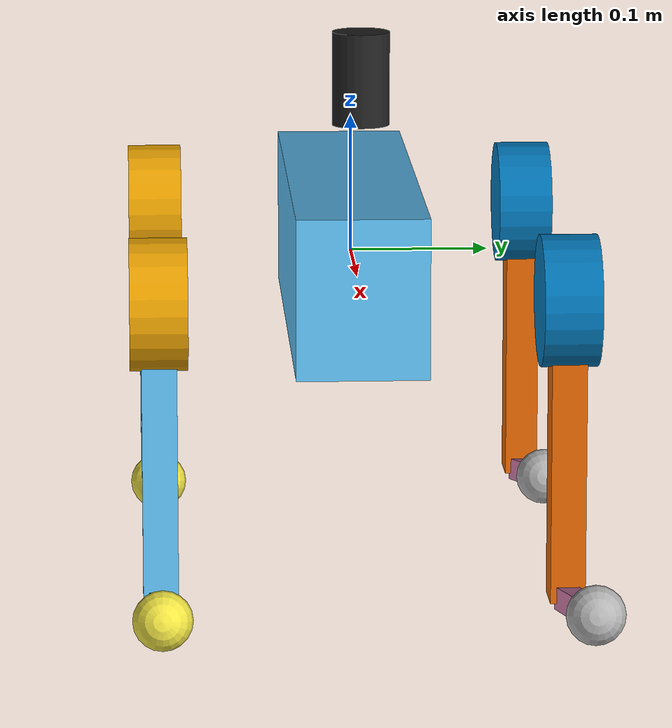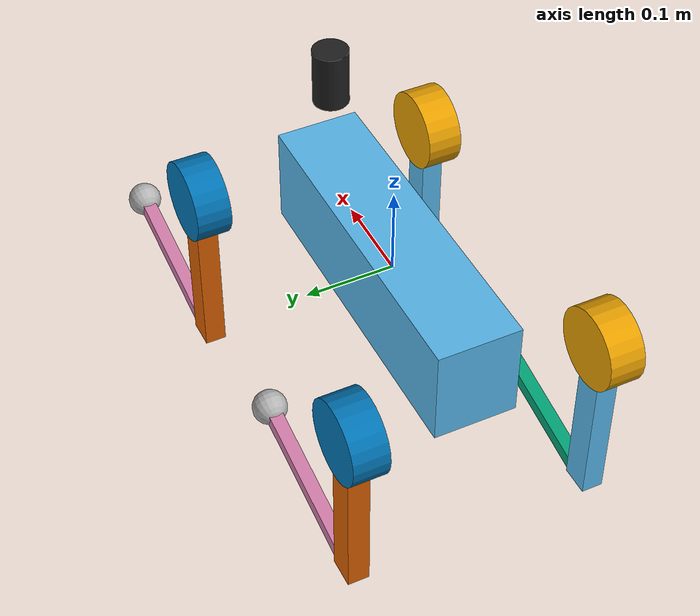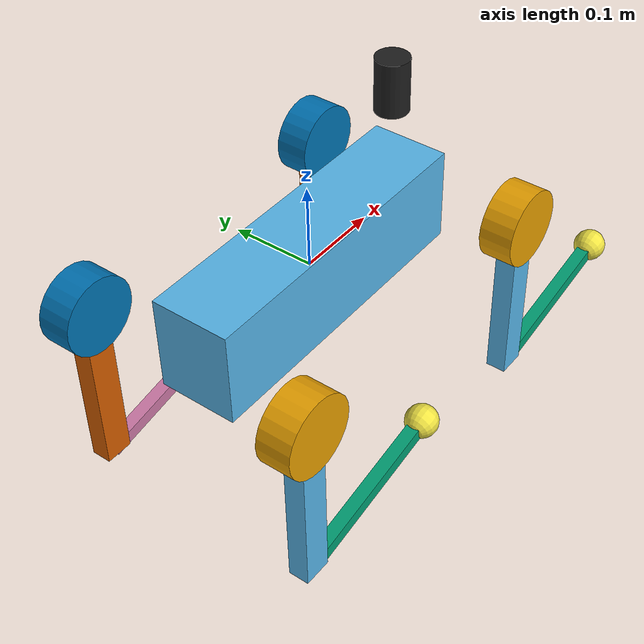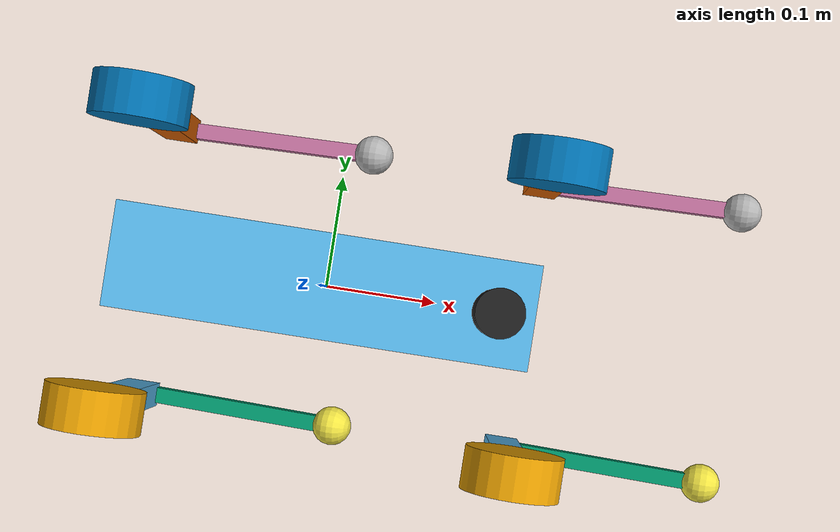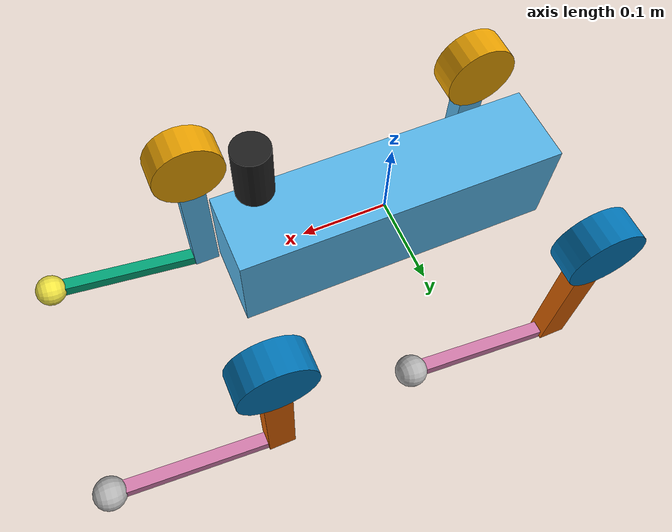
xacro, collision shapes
<?xml version="1.0"?>

<robot name="go2" xmlns:xacro="http://www.ros.org/wiki/xacro">

    <xacro:arg name="DEBUG" default="false"/>

    <xacro:include filename="$(find go2_description)/xacro/const.xacro"/>
    <xacro:include filename="$(find go2_description)/xacro/materials.xacro"/>
    <xacro:include filename="$(find go2_description)/xacro/leg.xacro"/>
    <xacro:include filename="$(find go2_description)/xacro/gazebo.xacro"/>

    <!-- Rotor related joint and link is only for demonstrate location. -->
    <!-- Actually, the rotor will rotate and the joint is not fixed. Reduction ratio should be considered. -->

    <!-- Debug mode will hung up the robot, use "true" or "false" to switch it. -->
    <xacro:if value="$(arg DEBUG)">
        <link name="world"/>
        <joint name="base_static_joint" type="fixed">
            <origin rpy="0 0 0" xyz="0 0 0"/>
            <parent link="world"/>
            <child link="base_link"/>
        </joint>
    </xacro:if>

    <!-- base_link must be URDF root so Champ IK measures hips correctly -->
    <link name="base_link">
        <visual>
            <origin rpy="0 0 0" xyz="0 0 0"/>
            <geometry>
                <box size="0.001 0.001 0.001"/>
            </geometry>
        </visual>
    </link>

    <joint name="floating_base" type="fixed">
        <origin rpy="0 0 0" xyz="0 0 0"/>
        <parent link="base_link"/>
        <child link="trunk"/>
    </joint>

    <link name="trunk">
        <visual>
            <origin rpy="0 0 0" xyz="0 0 0"/>
            <geometry>
                <mesh filename="package://go2_description/meshes/base.dae" scale="1 1 1"/>
            </geometry>
        </visual>
        <collision>
            <origin rpy="0 0 0" xyz="0 0 0"/>
            <geometry>
                <box size="${trunk_length} ${trunk_width} ${trunk_height}"/>
            </geometry>
        </collision>
        <inertial>
            <origin rpy="0 0 0" xyz="${trunk_com_x} ${trunk_com_y} ${trunk_com_z}"/>
            <mass value="${trunk_mass}"/>
            <inertia
                ixx="${trunk_ixx}" ixy="${trunk_ixy}" ixz="${trunk_ixz}"
                iyy="${trunk_iyy}" iyz="${trunk_iyz}"
                izz="${trunk_izz}"/>
        </inertial>
    </link>

    <joint name="imu_joint" type="fixed">
        <parent link="trunk"/>
        <child link="imu_link"/>
        <origin rpy="0 0 0" xyz="0 0 0"/>
    </joint>

    <gazebo>
        <plugin filename="gz-sim-pose-publisher-system" name="gz::sim::systems::PosePublisher">
            <publish_link_pose>false</publish_link_pose>
            <publish_model_pose>true</publish_model_pose>
            <use_pose_vector_msg>true</use_pose_vector_msg>
            <update_frequency>50</update_frequency>
        </plugin>
    </gazebo>

    <gazebo reference="imu_joint">
        <preserveFixedJoint>true</preserveFixedJoint>
    </gazebo>

    <link name="imu_link">
        <inertial>
            <mass value="0.1"/>
            <origin rpy="0 0 0" xyz="0 0 0"/>
            <inertia ixx="0.0001" ixy="0" ixz="0" iyy="0.0001" iyz="0" izz="0.0001"/>
        </inertial>
        <visual>
            <origin rpy="0 0 0" xyz="0 0 0"/>
            <geometry>
                <box size="0.001 0.001 0.001"/>
            </geometry>
        </visual>
        <collision>
            <origin rpy="0 0 0" xyz="0 0 0"/>
            <geometry>
                <box size=".001 .001 .001"/>
            </geometry>
        </collision>
    </link>

    <joint name="front_camera_joint" type="fixed">
        <parent link="trunk"/>
        <child link="front_camera"/>
        <origin rpy="0 0 0" xyz="0.32715 -0.00003 0.04297"/>
    </joint>

    <link name="front_camera">
    </link>

    <!-- Gimbal base attached to trunk -->
    <link name="gimbal_base_link">
        <inertial>
            <mass value="0.01"/>
            <origin rpy="0 0 0" xyz="0 0 0"/>
            <inertia ixx="1e-5" ixy="0" ixz="0" iyy="1e-5" iyz="0" izz="1e-5"/>
        </inertial>
    </link>

    <joint name="gimbal_base_joint" type="fixed">
        <parent link="trunk"/>
        <child link="gimbal_base_link"/>
        <origin rpy="0 0 0" xyz="0.15 0 0.15"/>
    </joint>

    <gazebo reference="gimbal_base_joint">
        <preserveFixedJoint>true</preserveFixedJoint>
    </gazebo>

    <!-- Gimbal roll link -->
    <link name="gimbal_roll_link">
        <inertial>
            <mass value="0.01"/>
            <origin rpy="0 0 0" xyz="0 0 0"/>
            <inertia ixx="1e-5" ixy="0" ixz="0" iyy="1e-5" iyz="0" izz="1e-5"/>
        </inertial>
    </link>

    <joint name="gimbal_roll_joint" type="fixed">
        <parent link="gimbal_base_link"/>
        <child link="gimbal_roll_link"/>
        <origin rpy="0 0 0" xyz="0 0 0"/>
    </joint>

    <!-- Gimbal pitch link -->
    <link name="gimbal_pitch_link">
        <inertial>
            <mass value="0.05"/>
            <origin rpy="0 0 0" xyz="0 0 0"/>
            <inertia ixx="0.001" ixy="0" ixz="0" iyy="0.001" iyz="0" izz="0.001"/>
        </inertial>
    </link>

    <joint name="gimbal_pitch_joint" type="fixed">
        <parent link="gimbal_roll_link"/>
        <child link="gimbal_pitch_link"/>
        <origin rpy="0 0 0" xyz="0 0 0"/>
    </joint>

    <!-- Livox Mid-360 LiDAR attached to the stabilized pitch link -->
    <joint name="livox_joint" type="fixed">
        <parent link="gimbal_pitch_link"/>
        <child link="livox_frame"/>
        <origin rpy="0 0 0" xyz="0 0 0"/>
    </joint>

    <gazebo reference="livox_joint">
        <preserveFixedJoint>true</preserveFixedJoint>
    </gazebo>

    <gazebo reference="livox_frame">
        <material>Gazebo/Black</material>
    </gazebo>

    <link name="livox_frame">
        <inertial>
            <mass value="0.265"/>
            <origin rpy="0 0 0" xyz="0 0 0"/>
            <inertia ixx="0.001" ixy="0" ixz="0" iyy="0.001" iyz="0" izz="0.001"/>
        </inertial>
        <visual>
            <origin rpy="0 0 0" xyz="0 0 0"/>
            <geometry>
                <cylinder length="0.065" radius="0.03"/>
            </geometry>
            <material name="black"/>
        </visual>
        <collision>
            <origin rpy="0 0 0" xyz="0 0 0"/>
            <geometry>
                <cylinder length="0.065" radius="0.02"/>
            </geometry>
        </collision>
    </link>

    <xacro:leg name="FR" mirror="-1" mirror_dae= "False" front_hind="1"  front_hind_dae="True"  />
    <xacro:leg name="FL" mirror="1"  mirror_dae="True"   front_hind="1"  front_hind_dae="True"  />
    <xacro:leg name="RR" mirror="-1" mirror_dae="False"  front_hind="-1" front_hind_dae="False" />
    <xacro:leg name="RL" mirror="1"  mirror_dae="True"   front_hind="-1" front_hind_dae="False" />
</robot>

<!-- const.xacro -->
<robot xmlns:xacro="http://www.ros.org/wiki/xacro">

    <!-- Constants for robot dimensions -->
    <xacro:property name="PI" value="3.1415926535897931"/>
    <xacro:property name="stick_mass" value="0.00001"/>

    <!-- simplified collision value -->
    <xacro:property name="trunk_width" value="0.0935"/>
    <xacro:property name="trunk_length" value="0.3762"/>
    <xacro:property name="trunk_height" value="0.114"/>
    <xacro:property name="hip_radius" value="0.046"/>
    <xacro:property name="hip_length" value="0.04"/>
    <xacro:property name="thigh_shoulder_radius" value="0.041"/>
    <xacro:property name="thigh_shoulder_length" value="0.032"/>
    <xacro:property name="thigh_width" value="0.0245"/>
    <xacro:property name="thigh_height" value="0.034"/>
    <xacro:property name="calf_width" value="0.016"/>
    <xacro:property name="calf_height" value="0.016"/>
    <xacro:property name="foot_radius" value="0.02"/>
    <xacro:property name="stick_radius" value="0.01"/>
    <xacro:property name="stick_length" value="0.2"/>

    <!-- kinematic value -->
    <xacro:property name="thigh_offset" value="0.0955"/>
    <xacro:property name="thigh_length" value="0.213"/>
    <xacro:property name="calf_length" value="0.213"/>

    <!-- leg offset from trunk center value -->
    <xacro:property name="leg_offset_x" value="0.1934"/>
    <xacro:property name="leg_offset_y" value="0.0465"/>
    <xacro:property name="hip_offset" value="0.0955"/>

    <!-- offset of link locations (left front) -->
    <xacro:property name="hip_offset_x" value="0.1934"/>
    <xacro:property name="hip_offset_y" value="0.0465"/>
    <xacro:property name="hip_offset_z" value="0.0"/>

    <xacro:property name="thigh_offset_x" value="0"/>
    <xacro:property name="thigh_offset_y" value="0.0955"/>
    <xacro:property name="thigh_offset_z" value="0.0"/>

    <xacro:property name="calf_offset_x" value="0.0"/>
    <xacro:property name="calf_offset_y" value="0.0"/>
    <xacro:property name="calf_offset_z" value="-0.213"/>

    <!-- joint limits -->
    <xacro:property name="damping" value="0.0"/>
    <xacro:property name="friction" value="0.0"/>
    <xacro:property name="hip_position_max" value="1.0472"/>
    <xacro:property name="hip_position_min" value="-1.0472"/>
    <xacro:property name="hip_velocity_max" value="30.1"/>
    <xacro:property name="hip_torque_max" value="23.7"/>
    <xacro:property name="thigh_position_max" value="3.4907"/>
    <xacro:property name="thigh_position_min" value="-1.5708"/>
    <xacro:property name="thigh_velocity_max" value="30.1"/>
    <xacro:property name="thigh_torque_max" value="23.7"/>
    <xacro:property name="calf_position_max" value="-0.83776"/>
    <xacro:property name="calf_position_min" value="-2.7227"/>
    <xacro:property name="calf_velocity_max" value="20.06"/>
    <xacro:property name="calf_torque_max" value="35.55"/>

    <!-- dynamics inertial value -->
    <!-- trunk -->
    <xacro:property name="trunk_mass" value="6.921"/>
    <xacro:property name="trunk_com_x" value="0.021112"/>
    <xacro:property name="trunk_com_y" value="0.00"/>
    <xacro:property name="trunk_com_z" value="-0.005366"/>
    <xacro:property name="trunk_ixx" value="0.02448"/>
    <xacro:property name="trunk_ixy" value="0.00012166"/>
    <xacro:property name="trunk_ixz" value="0.0014849"/>
    <xacro:property name="trunk_iyy" value="0.098077"/>
    <xacro:property name="trunk_iyz" value="-3.12E-05"/>
    <xacro:property name="trunk_izz" value="0.107"/>

    <!-- hip (left front) -->
    <xacro:property name="hip_mass" value="0.678"/>
    <xacro:property name="hip_com_x" value="-0.0054"/>
    <xacro:property name="hip_com_y" value="0.00194"/>
    <xacro:property name="hip_com_z" value="-0.000105"/>
    <xacro:property name="hip_ixx" value="0.00048"/>
    <xacro:property name="hip_ixy" value="-3.01E-06"/>
    <xacro:property name="hip_ixz" value="1.11E-06"/>
    <xacro:property name="hip_iyy" value="0.000884"/>
    <xacro:property name="hip_iyz" value="-1.42E-06"/>
    <xacro:property name="hip_izz" value="0.000596"/>

    <!-- thigh -->
    <xacro:property name="thigh_mass" value="1.152"/>
    <xacro:property name="thigh_com_x" value="-0.00374"/>
    <xacro:property name="thigh_com_y" value="-0.0223"/>
    <xacro:property name="thigh_com_z" value="-0.0327"/>
    <xacro:property name="thigh_ixx" value="0.00584"/>
    <xacro:property name="thigh_ixy" value="8.72E-05"/>
    <xacro:property name="thigh_ixz" value="-0.000289"/>
    <xacro:property name="thigh_iyy" value="0.0058"/>
    <xacro:property name="thigh_iyz" value="0.000808"/>
    <xacro:property name="thigh_izz" value="0.00103"/>

    <!-- calf -->
    <xacro:property name="calf_mass" value="0.154"/>
    <xacro:property name="calf_com_x" value="0.00548"/>
    <xacro:property name="calf_com_y" value="-0.000975"/>
    <xacro:property name="calf_com_z" value="-0.115"/>
    <xacro:property name="calf_ixx" value="0.00108"/>
    <xacro:property name="calf_ixy" value="3.4E-07"/>
    <xacro:property name="calf_ixz" value="1.72E-05"/>
    <xacro:property name="calf_iyy" value="0.0011"/>
    <xacro:property name="calf_iyz" value="8.28E-06"/>
    <xacro:property name="calf_izz" value="3.29E-05"/>

    <!-- foot -->
    <xacro:property name="foot_mass" value="0.06"/>

</robot>

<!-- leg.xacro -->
<robot xmlns:xacro="http://www.ros.org/wiki/xacro">

    <xacro:include filename="$(find go2_description)/xacro/transmission.xacro"/>

    <xacro:macro name="leg" params="name mirror mirror_dae front_hind front_hind_dae">

        <joint name="${name}_hip_joint" type="revolute">
            <xacro:if value="${(mirror_dae == False) and (front_hind_dae == True)}">
                <origin rpy="0 0 0" xyz="${leg_offset_x} ${-leg_offset_y} 0"/>
            </xacro:if>
            <xacro:if value="${(mirror_dae == True) and (front_hind_dae == True)}">
                <origin rpy="0 0 0" xyz="${leg_offset_x} ${leg_offset_y} 0"/>
            </xacro:if>
            <xacro:if value="${(mirror_dae == False) and (front_hind_dae == False)}">
                <origin rpy="0 0 0" xyz="${-leg_offset_x} ${-leg_offset_y} 0"/>
            </xacro:if>
            <xacro:if value="${(mirror_dae == True) and (front_hind_dae == False)}">
                <origin rpy="0 0 0" xyz="${-leg_offset_x} ${leg_offset_y} 0"/>
            </xacro:if>
            <parent link="trunk"/>
            <child link="${name}_hip"/>
            <axis xyz="1 0 0"/>
            <dynamics damping="${damping}" friction="${friction}"/>
            <xacro:if value="${(mirror_dae == True)}">
                <limit effort="${hip_torque_max}" velocity="${hip_velocity_max}" lower="${hip_position_min}" upper="${hip_position_max}"/>
            </xacro:if>
            <xacro:if value="${(mirror_dae == False)}">
                <limit effort="${hip_torque_max}" velocity="${hip_velocity_max}" lower="${-hip_position_max}" upper="${-hip_position_min}"/>
            </xacro:if>
        </joint>

        <link name="${name}_hip">
            <visual>
                <xacro:if value="${(mirror_dae == True) and (front_hind_dae == True)}">
                    <origin rpy="0 0 0" xyz="0 0 0"/>
                </xacro:if>
                <xacro:if value="${(mirror_dae == False) and (front_hind_dae == True)}">
                    <origin rpy="${PI} 0 0" xyz="0 0 0"/>
                </xacro:if>
                <xacro:if value="${(mirror_dae == True) and (front_hind_dae == False)}">
                    <origin rpy="0 ${PI} 0" xyz="0 0 0"/>
                </xacro:if>
                <xacro:if value="${(mirror_dae == False) and (front_hind_dae == False)}">
                    <origin rpy="${PI} ${PI} 0" xyz="0 0 0"/>
                </xacro:if>
                <geometry>
                    <mesh filename="package://go2_description/meshes/hip.dae" scale="1 1 1"/>
                </geometry>
            </visual>
            <collision>
                <origin rpy="${PI/2.0} 0 0" xyz="0 ${hip_offset*mirror} 0"/>
                <geometry>
                    <cylinder length="${hip_length}" radius="${hip_radius}"/>
                </geometry>
            </collision>
            <inertial>
                <origin rpy="0 0 0" xyz="${hip_com_x*front_hind} ${hip_com_y*mirror} ${hip_com_z}"/>
                <mass value="${hip_mass}"/>
                <inertia
                    ixx="${hip_ixx}" ixy="${hip_ixy*mirror*front_hind}" ixz="${hip_ixz*front_hind}"
                    iyy="${hip_iyy}" iyz="${hip_iyz*mirror}"
                    izz="${hip_izz}"/>
            </inertial>
        </link>

        <joint name="${name}_thigh_joint" type="revolute">
            <origin rpy="0 0 0" xyz="0 ${thigh_offset*mirror} 0"/>
            <parent link="${name}_hip"/>
            <child link="${name}_thigh"/>
            <axis xyz="0 1 0"/>
            <dynamics damping="${damping}" friction="${friction}"/>
            <limit effort="${thigh_torque_max}" velocity="${thigh_velocity_max}" lower="${thigh_position_min}" upper="${thigh_position_max}"/>
        </joint>

        <link name="${name}_thigh">
            <visual>
                <origin rpy="0 0 0" xyz="0 0 0"/>
                <geometry>
                    <xacro:if value="${mirror_dae == True}">
                        <mesh filename="package://go2_description/meshes/thigh.dae" scale="1 1 1"/>
                    </xacro:if>
                    <xacro:if value="${mirror_dae == False}">
                        <mesh filename="package://go2_description/meshes/thigh_mirror.dae" scale="1 1 1"/>
                    </xacro:if>
                </geometry>
            </visual>
            <collision>
                <origin rpy="0 ${PI/2.0} 0" xyz="0 0 ${-thigh_length/2.0}"/>
                <geometry>
                    <box size="${thigh_length} ${thigh_width} ${thigh_height}"/>
                </geometry>
            </collision>
            <inertial>
                <origin rpy="0 0 0" xyz="${thigh_com_x} ${thigh_com_y*mirror} ${thigh_com_z}"/>
                <mass value="${thigh_mass}"/>
                <inertia
                    ixx="${thigh_ixx}" ixy="${thigh_ixy*mirror}" ixz="${thigh_ixz}"
                    iyy="${thigh_iyy}" iyz="${thigh_iyz*mirror}"
                    izz="${thigh_izz}"/>
            </inertial>
        </link>

        <joint name="${name}_calf_joint" type="revolute">
            <origin rpy="0 0 0" xyz="0 0 ${-thigh_length}"/>
            <parent link="${name}_thigh"/>
            <child link="${name}_calf"/>
            <axis xyz="0 1 0"/>
            <dynamics damping="${damping}" friction="${friction}"/>
            <limit effort="${calf_torque_max}" velocity="${calf_velocity_max}" lower="${calf_position_min}" upper="${calf_position_max}"/>
        </joint>

        <link name="${name}_calf">
            <visual>
                <origin rpy="0 0 0" xyz="0 0 0"/>
                <geometry>
                    <mesh filename="package://go2_description/meshes/calf.dae" scale="1 1 1"/>
                </geometry>
            </visual>
            <collision>
                <origin rpy="0 ${PI/2.0} 0" xyz="0 0 ${-calf_length/2.0}"/>
                <geometry>
                    <box size="${calf_length} ${calf_width} ${calf_height}"/>
                </geometry>
            </collision>
            <inertial>
                <origin rpy="0 0 0" xyz="${calf_com_x} ${calf_com_y} ${calf_com_z}"/>
                <mass value="${calf_mass}"/>
                <inertia
                    ixx="${calf_ixx}" ixy="${calf_ixy}" ixz="${calf_ixz}"
                    iyy="${calf_iyy}" iyz="${calf_iyz}"
                    izz="${calf_izz}"/>
            </inertial>
        </link>

        <joint name="${name}_foot_fixed" type="fixed">0
            <origin rpy="0 0 0" xyz="0 0 ${-(calf_length)}"/>
            <parent link="${name}_calf"/>
            <child link="${name}_foot"/>
        </joint>

        <link name="${name}_foot">
            <visual>
                <origin rpy="0 0 0" xyz="0 0 0"/>
                <geometry>
                    <sphere radius="${foot_radius-0.01}"/>
                </geometry>
            </visual>
            <collision>
                <origin rpy="0 0 0" xyz="0 0 0"/>
                <geometry>
                    <sphere radius="${foot_radius}"/>
                </geometry>
            </collision>
            <inertial>
                <mass value="${foot_mass}"/>
                <inertia
                    ixx="${(2*foot_mass)/5.0*(foot_radius*foot_radius)}" ixy="0.0" ixz="0.0"
                    iyy="${(2*foot_mass)/5.0*(foot_radius*foot_radius)}" iyz="0.0"
                    izz="${(2*foot_mass)/5.0*(foot_radius*foot_radius)}"/>
            </inertial>
        </link>

        <xacro:leg_transmission name="${name}"/>
    </xacro:macro>
</robot>
